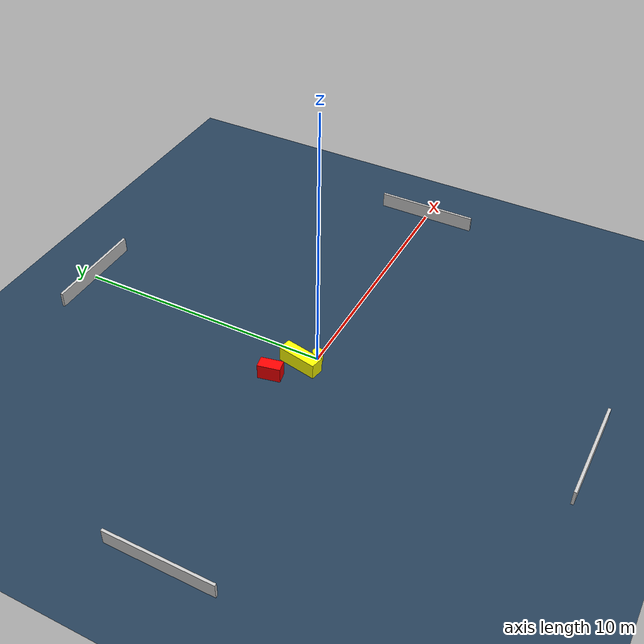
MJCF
<?xml version="1.0" ?>
<mujoco model="generated_environment">
  <option timestep="0.01" integrator="RK4" cone="elliptic"/>
  <default>
    <geom density="1"/>
  </default>
  <asset>
    <texture builtin="gradient" height="3072" name="skybox" rgb1="0.3 0.5 0.7" rgb2="0 0 0" type="skybox" width="512"/>
    <texture builtin="checker" height="300" name="groundplane" rgb1="0.2 0.3 0.4" rgb2="0.1 0.2 0.3" type="2d" width="300"/>
    <material name="groundplane" reflectance="0.2" texrepeat="5 5" texture="groundplane"/>
  </asset>
  <worldbody>
    <light dir="0 0 -1" directional="true" pos="0 0 1.5"/>
    <geom condim="3" friction="0.5 0.005 0.001" material="groundplane" name="floor" pos="0 0 0" size="0 0 0.05" type="plane"/>
    <body name="walls">
      <geom name="wall_1" condim="4" pos="-10.0 0.0 0.3" rgba="0.800000011920929 0.800000011920929 0.800000011920929 1.0" size="0.05 2.0 0.3" type="box"/>
      <geom name="wall_2" condim="4" pos="10.0 0.0 0.3" rgba="0.800000011920929 0.800000011920929 0.800000011920929 1.0" size="0.05 2.0 0.3" type="box"/>
      <geom name="wall_3" condim="4" pos="0.0 -10.0 0.3" rgba="0.800000011920929 0.800000011920929 0.800000011920929 1.0" size="2.0 0.05 0.3" type="box"/>
      <geom name="wall_4" condim="4" pos="0.0 10.0 0.3" rgba="0.800000011920929 0.800000011920929 0.800000011920929 1.0" size="2.0 0.05 0.3" type="box"/>
    </body>
    <body name="robot">
      <joint name="joint_x" type="slide" pos="0 0 0" axis="1 0 0"/>
      <joint name="joint_y" type="slide" pos="0 0 0" axis="0 1 0"/>
      <geom name="robot" type="cylinder" pos="0.0 0.0 0.2" size="0.2 0.2 0.0" mass="5.0" friction="1.0 0.005 0.0001" condim="4" rgba="1.0 1.0 0.0 1.0"/>
    </body>
    <body name="obstacle_1_movable">
      <geom name="obstacle_1_movable" condim="4" pos="-0.5487248384777818 0.4055732493863125 0.3" euler="0 0 348.80002709109306" friction="0.0 0.005 0.001" rgba="1.0 1.0 0.0 1.0" size="0.25723457730686267 0.7658277682800121 0.3" type="box" mass="0.1"/>
      <joint type="free"/>
    </body>
    <body name="obstacle_2_static">
      <geom name="obstacle_2_static" condim="4" pos="-1.5209768436553077 1.092604319760217 0.3" euler="0 0 101.504699981534" friction="0.0 0.005 0.001" rgba="1.0 0.0 0.0 1.0" size="0.42457463090635084 0.2298836716760877 0.3" type="box"/>
    </body>
  </worldbody>
  <actuator>
    <motor name="actuator_x" joint="joint_x" gear="1" ctrlrange="-1 1"/>
    <motor name="actuator_y" joint="joint_y" gear="1" ctrlrange="-1 1"/>
  </actuator>
</mujoco>
